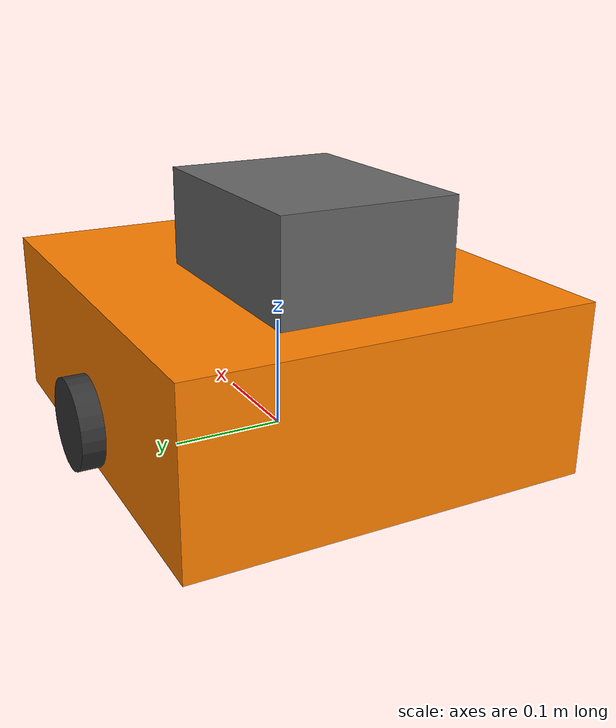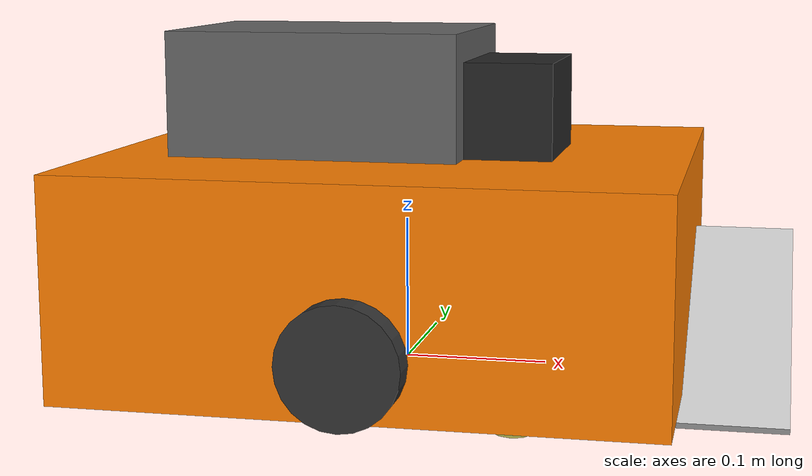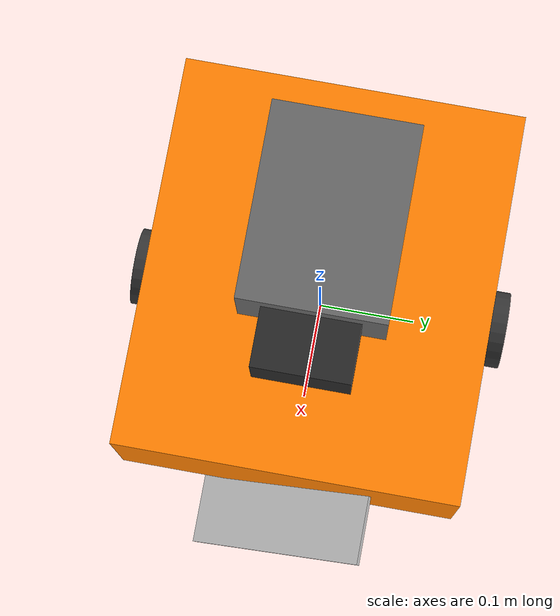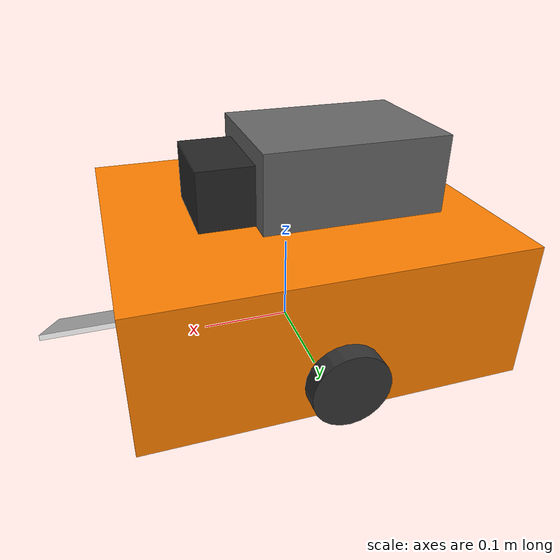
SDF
<?xml version="1.0"?>
<sdf version="1.9">
  <model name="axiom_d1">
    <static>false</static>

    <!--  CHASSIS (main body)                                         -->
    <!--  400mm L x 350mm W x 150mm H, 6061-T6 aluminium frame       -->
    <!--  Total robot mass: 14 kg                                     -->
    <link name="chassis">
      <pose>0 0 0.075 0 0 0</pose>

      <inertial>
        <mass>10.0</mass>
        <inertia>
          <!-- Approximated as solid box: 0.4 x 0.35 x 0.15, m=10 kg -->
          <ixx>0.121</ixx>
          <iyy>0.152</iyy>
          <izz>0.235</izz>
          <ixy>0</ixy>
          <ixz>0</ixz>
          <iyz>0</iyz>
        </inertia>
      </inertial>

      <collision name="chassis_collision">
        <geometry>
          <box>
            <size>0.40 0.35 0.15</size>
          </box>
        </geometry>
      </collision>

      <visual name="chassis_visual">
        <geometry>
          <box>
            <size>0.40 0.35 0.15</size>
          </box>
        </geometry>
        <material>
          <ambient>1.0 0.5 0.0 1</ambient>
          <diffuse>1.0 0.5 0.0 1</diffuse>
          <specular>0.3 0.3 0.3 1</specular>
        </material>
      </visual>

      <!--  SCOOP (front-mounted, visual only)                      -->
      <visual name="scoop_visual">
        <pose>0.22 0 -0.04 0.52 0 0</pose>
        <geometry>
          <box>
            <size>0.10 0.20 0.005</size>
          </box>
        </geometry>
        <material>
          <ambient>0.7 0.7 0.7 1</ambient>
          <diffuse>0.8 0.8 0.8 1</diffuse>
        </material>
      </visual>

      <!--  COLLECTION BIN (top-mounted, visual only)               -->
      <visual name="bin_visual">
        <pose>-0.05 0 0.10 0 0 0</pose>
        <geometry>
          <box>
            <size>0.20 0.15 0.12</size>
          </box>
        </geometry>
        <material>
          <ambient>0.3 0.3 0.3 1</ambient>
          <diffuse>0.4 0.4 0.4 1</diffuse>
        </material>
      </visual>

      <!--  ELECTRONICS ENCLOSURE (centre, visual only)             -->
      <visual name="enclosure_visual">
        <pose>0.05 0 0.10 0 0 0</pose>
        <geometry>
          <box>
            <size>0.12 0.10 0.08</size>
          </box>
        </geometry>
        <material>
          <ambient>0.1 0.1 0.1 1</ambient>
          <diffuse>0.15 0.15 0.15 1</diffuse>
        </material>
      </visual>

      <!--  CAMERA SENSOR (OV2640 on ESP32-CAM)                     -->
      <sensor name="camera" type="camera">
        <pose>0.20 0 0.10 0 0 0</pose>
        <always_on>true</always_on>
        <update_rate>15</update_rate>
        <camera>
          <horizontal_fov>1.047</horizontal_fov>
          <image>
            <width>640</width>
            <height>480</height>
          </image>
          <clip>
            <near>0.05</near>
            <far>50</far>
          </clip>
        </camera>
      </sensor>

      <!--  IMU SENSOR (MPU6050)                                    -->
      <sensor name="imu" type="imu">
        <always_on>true</always_on>
        <update_rate>50</update_rate>
        <imu>
          <angular_velocity>
            <x><noise type="gaussian"><mean>0</mean><stddev>0.01</stddev></noise></x>
            <y><noise type="gaussian"><mean>0</mean><stddev>0.01</stddev></noise></y>
            <z><noise type="gaussian"><mean>0</mean><stddev>0.01</stddev></noise></z>
          </angular_velocity>
          <linear_acceleration>
            <x><noise type="gaussian"><mean>0</mean><stddev>0.05</stddev></noise></x>
            <y><noise type="gaussian"><mean>0</mean><stddev>0.05</stddev></noise></y>
            <z><noise type="gaussian"><mean>0</mean><stddev>0.05</stddev></noise></z>
          </linear_acceleration>
        </imu>
      </sensor>

      <!--  FRONT ULTRASONIC SENSOR (HC-SR04)                       -->
      <!--  Approximated as a lidar ray sensor with narrow FOV      -->
      <sensor name="ultrasonic_front" type="gpu_lidar">
        <pose>0.20 0 0.05 0 0 0</pose>
        <always_on>true</always_on>
        <update_rate>10</update_rate>
        <lidar>
          <scan>
            <horizontal>
              <samples>1</samples>
              <resolution>1</resolution>
              <min_angle>0</min_angle>
              <max_angle>0</max_angle>
            </horizontal>
          </scan>
          <range>
            <min>0.02</min>
            <max>4.0</max>
            <resolution>0.003</resolution>
          </range>
        </lidar>
      </sensor>

      <!--  REAR ULTRASONIC SENSOR (HC-SR04)                        -->
      <sensor name="ultrasonic_rear" type="gpu_lidar">
        <pose>-0.20 0 0.05 0 3.14159 0</pose>
        <always_on>true</always_on>
        <update_rate>10</update_rate>
        <lidar>
          <scan>
            <horizontal>
              <samples>1</samples>
              <resolution>1</resolution>
              <min_angle>0</min_angle>
              <max_angle>0</max_angle>
            </horizontal>
          </scan>
          <range>
            <min>0.02</min>
            <max>4.0</max>
            <resolution>0.003</resolution>
          </range>
        </lidar>
      </sensor>
    </link>

    <!--  LEFT TRACK (approximated as a wide cylinder/wheel)          -->
    <!--  Rubber caterpillar: 250mm long x 40mm wide                  -->
    <!--  Sprocket pitch radius: 20mm                                 -->
    <link name="left_track">
      <pose>0 0.175 0.04 -1.5708 0 0</pose>

      <inertial>
        <mass>2.0</mass>
        <inertia>
          <!-- Cylinder: r=0.04, h=0.04 -->
          <ixx>0.0011</ixx>
          <iyy>0.0011</iyy>
          <izz>0.0016</izz>
          <ixy>0</ixy>
          <ixz>0</ixz>
          <iyz>0</iyz>
        </inertia>
      </inertial>

      <collision name="left_track_collision">
        <geometry>
          <cylinder>
            <radius>0.04</radius>
            <length>0.04</length>
          </cylinder>
        </geometry>
        <surface>
          <friction>
            <ode>
              <mu>1.0</mu>
              <mu2>0.5</mu2>
            </ode>
          </friction>
        </surface>
      </collision>

      <visual name="left_track_visual">
        <geometry>
          <cylinder>
            <radius>0.04</radius>
            <length>0.04</length>
          </cylinder>
        </geometry>
        <material>
          <ambient>0.1 0.1 0.1 1</ambient>
          <diffuse>0.2 0.2 0.2 1</diffuse>
        </material>
      </visual>
    </link>

    <!--  RIGHT TRACK                                                 -->
    <link name="right_track">
      <pose>0 -0.175 0.04 -1.5708 0 0</pose>

      <inertial>
        <mass>2.0</mass>
        <inertia>
          <ixx>0.0011</ixx>
          <iyy>0.0011</iyy>
          <izz>0.0016</izz>
          <ixy>0</ixy>
          <ixz>0</ixz>
          <iyz>0</iyz>
        </inertia>
      </inertial>

      <collision name="right_track_collision">
        <geometry>
          <cylinder>
            <radius>0.04</radius>
            <length>0.04</length>
          </cylinder>
        </geometry>
        <surface>
          <friction>
            <ode>
              <mu>1.0</mu>
              <mu2>0.5</mu2>
            </ode>
          </friction>
        </surface>
      </collision>

      <visual name="right_track_visual">
        <geometry>
          <cylinder>
            <radius>0.04</radius>
            <length>0.04</length>
          </cylinder>
        </geometry>
        <material>
          <ambient>0.1 0.1 0.1 1</ambient>
          <diffuse>0.2 0.2 0.2 1</diffuse>
        </material>
      </visual>
    </link>

    <!--  LEFT BRUSH ASSEMBLY (visual only)                           -->
    <link name="left_brush">
      <pose>0.10 0.14 0.02 -1.5708 0 0</pose>
      <inertial>
        <mass>0.5</mass>
        <inertia>
          <ixx>0.0002</ixx>
          <iyy>0.0002</iyy>
          <izz>0.0002</izz>
          <ixy>0</ixy><ixz>0</ixz><iyz>0</iyz>
        </inertia>
      </inertial>
      <visual name="left_brush_visual">
        <geometry>
          <cylinder>
            <radius>0.03</radius>
            <length>0.02</length>
          </cylinder>
        </geometry>
        <material>
          <ambient>0.6 0.6 0.2 1</ambient>
          <diffuse>0.7 0.7 0.3 1</diffuse>
        </material>
      </visual>
    </link>

    <!--  RIGHT BRUSH ASSEMBLY (visual only)                          -->
    <link name="right_brush">
      <pose>0.10 -0.14 0.02 -1.5708 0 0</pose>
      <inertial>
        <mass>0.5</mass>
        <inertia>
          <ixx>0.0002</ixx>
          <iyy>0.0002</iyy>
          <izz>0.0002</izz>
          <ixy>0</ixy><ixz>0</ixz><iyz>0</iyz>
        </inertia>
      </inertial>
      <visual name="right_brush_visual">
        <geometry>
          <cylinder>
            <radius>0.03</radius>
            <length>0.02</length>
          </cylinder>
        </geometry>
        <material>
          <ambient>0.6 0.6 0.2 1</ambient>
          <diffuse>0.7 0.7 0.3 1</diffuse>
        </material>
      </visual>
    </link>

    <!--  JOINTS                                                      -->

    <joint name="left_track_joint" type="revolute">
      <parent>chassis</parent>
      <child>left_track</child>
      <axis>
        <xyz>0 0 1</xyz>
        <limit>
          <lower>-1e16</lower>
          <upper>1e16</upper>
        </limit>
      </axis>
    </joint>

    <joint name="right_track_joint" type="revolute">
      <parent>chassis</parent>
      <child>right_track</child>
      <axis>
        <xyz>0 0 1</xyz>
        <limit>
          <lower>-1e16</lower>
          <upper>1e16</upper>
        </limit>
      </axis>
    </joint>

    <joint name="left_brush_joint" type="fixed">
      <parent>chassis</parent>
      <child>left_brush</child>
    </joint>

    <joint name="right_brush_joint" type="fixed">
      <parent>chassis</parent>
      <child>right_brush</child>
    </joint>

    <!--  DIFFERENTIAL DRIVE PLUGIN (skid-steer via tracks)           -->
    <!--  Simulates the L298N-driven track motors                     -->
    <plugin
      filename="gz-sim-diff-drive-system"
      name="gz::sim::systems::DiffDrive">
      <left_joint>left_track_joint</left_joint>
      <right_joint>right_track_joint</right_joint>
      <wheel_separation>0.35</wheel_separation>
      <wheel_radius>0.04</wheel_radius>
      <max_linear_acceleration>0.5</max_linear_acceleration>
      <max_angular_acceleration>1.0</max_angular_acceleration>
      <odom_publish_frequency>10</odom_publish_frequency>
      <topic>cmd_vel</topic>
      <odom_topic>odom</odom_topic>
    </plugin>

    <!-- Sensor plugins -->
    <plugin
      filename="gz-sim-imu-system"
      name="gz::sim::systems::Imu">
    </plugin>

    <plugin
      filename="gz-sim-sensors-system"
      name="gz::sim::systems::Sensors">
      <render_engine>ogre2</render_engine>
    </plugin>

  </model>
</sdf>
